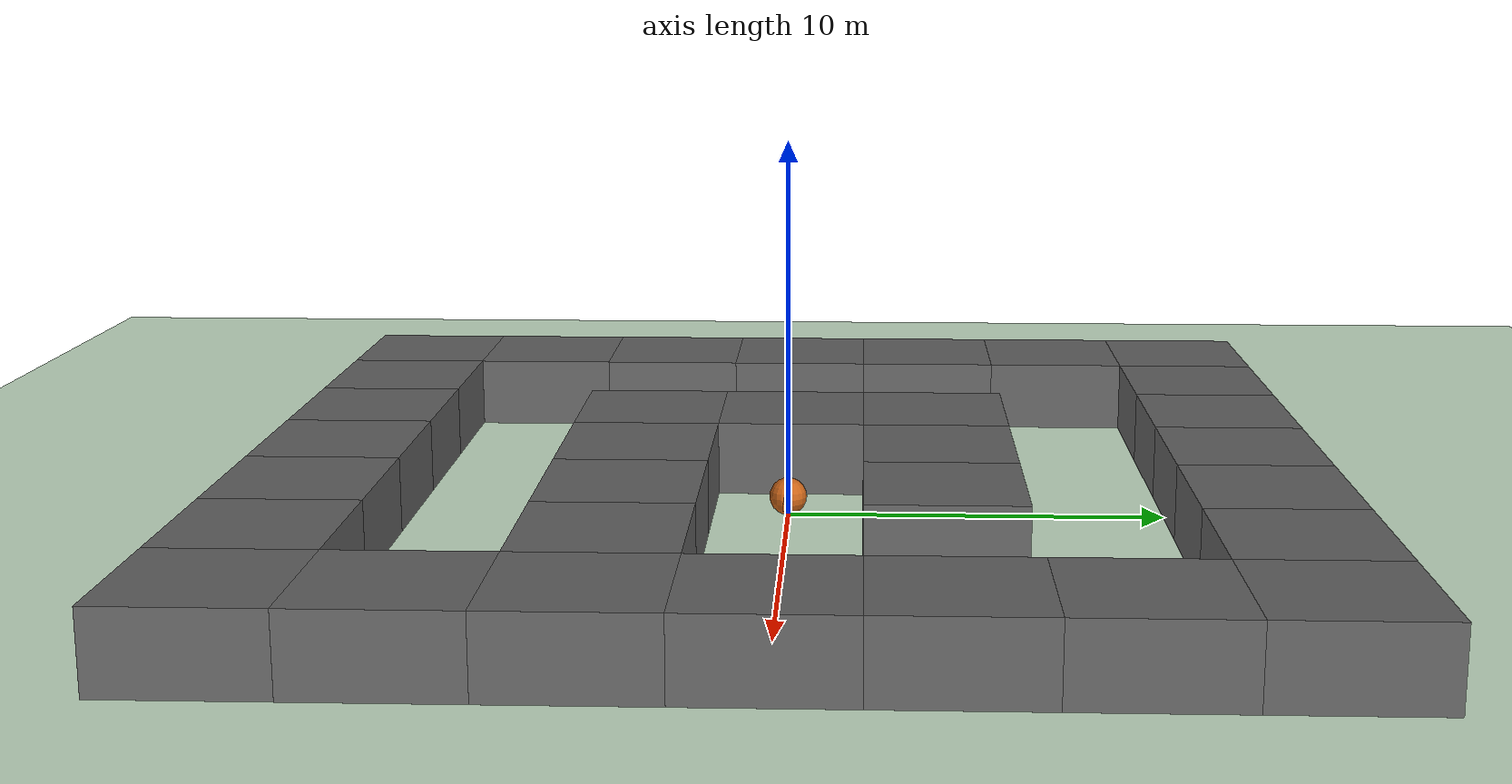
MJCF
<mujoco>
    <compiler angle="degree" coordinate="local" inertiafromgeom="true" />
    <option integrator="RK4" timestep="0.02" />
    <default>
        <joint armature="0" damping="0" limited="false" />
        <geom conaffinity="0" condim="3" density="100" friction="1.0 0.5 0.5" margin="0" rgba="0.8 0.6 0.4 1" />
    </default>
    <asset>
        <texture builtin="gradient" height="100" rgb1="1 1 1" rgb2="0 0 0" type="skybox" width="100" />
        <texture builtin="flat" height="1278" mark="cross" markrgb="1 1 1" name="texgeom" random="0.01" rgb1="0.8 0.6 0.4" rgb2="0.8 0.6 0.4" type="cube" width="127" />
        <texture builtin="checker" height="100" name="texplane" rgb1="0.2 0.3 0.4" rgb2="0.1 0.2 0.3" type="2d" width="100" />
        <material name="MatPlane" reflectance="0.5" shininess="1" specular="1" texrepeat="30 30" texture="texplane" />
        <material name="geom" texture="texgeom" texuniform="true" />
    </asset>
    <worldbody>
        <camera name="topview" pos="8 8 55" quat="1 0 0 0" />

        <light cutoff="100" diffuse="1 1 1" dir="-0 0 -1.3" directional="true" exponent="1" pos="0 0 1.3" specular=".1 .1 .1" />
        <geom conaffinity="1" condim="3" material="MatPlane" name="floor" pos="0 0 0" rgba="0.8 0.9 0.8 1" size="40 40 40" type="plane" />

        <body name="torso" pos="0 0 0">
            <geom name="pointbody" pos="0 0 0.5" rgba="0.8 0.4 0.1 1" size="0.5" solimp="0.9 0.99 0.001" type="sphere" />
            <geom name="pointarrow" pos="0.6 0 0.5" rgba="0.8 0.4 0.1 1" size="0.5 0.1 0.1" solimp="0.9 0.99 0.001" type="box" />
            <joint axis="1 0 0" name="ballx" pos="0 0 0" type="slide" />
            <joint axis="0 1 0" name="bally" pos="0 0 0" type="slide" />
            <joint axis="0 0 1" limited="false" name="rot" pos="0 0 0" type="hinge" />
        </body>
        <geom conaffinity="1" contype="1" material="" name="block_0_0" pos="-12.0 -12.0 1.0" rgba="0.4 0.4 0.4 1" size="2.0 2.0 1.0" type="box" />
        <geom conaffinity="1" contype="1" material="" name="block_0_1" pos="-8.0 -12.0 1.0" rgba="0.4 0.4 0.4 1" size="2.0 2.0 1.0" type="box" />
        <geom conaffinity="1" contype="1" material="" name="block_0_2" pos="-4.0 -12.0 1.0" rgba="0.4 0.4 0.4 1" size="2.0 2.0 1.0" type="box" />
        <geom conaffinity="1" contype="1" material="" name="block_0_3" pos="0.0 -12.0 1.0" rgba="0.4 0.4 0.4 1" size="2.0 2.0 1.0" type="box" />
        <geom conaffinity="1" contype="1" material="" name="block_0_4" pos="4.0 -12.0 1.0" rgba="0.4 0.4 0.4 1" size="2.0 2.0 1.0" type="box" />
        <geom conaffinity="1" contype="1" material="" name="block_0_5" pos="8.0 -12.0 1.0" rgba="0.4 0.4 0.4 1" size="2.0 2.0 1.0" type="box" />
        <geom conaffinity="1" contype="1" material="" name="block_0_6" pos="12.0 -12.0 1.0" rgba="0.4 0.4 0.4 1" size="2.0 2.0 1.0" type="box" />
        <geom conaffinity="1" contype="1" material="" name="block_1_0" pos="-12.0 -8.0 1.0" rgba="0.4 0.4 0.4 1" size="2.0 2.0 1.0" type="box" />
        <geom conaffinity="1" contype="1" material="" name="block_1_6" pos="12.0 -8.0 1.0" rgba="0.4 0.4 0.4 1" size="2.0 2.0 1.0" type="box" />
        <geom conaffinity="1" contype="1" material="" name="block_2_0" pos="-12.0 -4.0 1.0" rgba="0.4 0.4 0.4 1" size="2.0 2.0 1.0" type="box" />
        <geom conaffinity="1" contype="1" material="" name="block_2_2" pos="-4.0 -4.0 1.0" rgba="0.4 0.4 0.4 1" size="2.0 2.0 1.0" type="box" />
        <geom conaffinity="1" contype="1" material="" name="block_2_3" pos="0.0 -4.0 1.0" rgba="0.4 0.4 0.4 1" size="2.0 2.0 1.0" type="box" />
        <geom conaffinity="1" contype="1" material="" name="block_2_4" pos="4.0 -4.0 1.0" rgba="0.4 0.4 0.4 1" size="2.0 2.0 1.0" type="box" />
        <geom conaffinity="1" contype="1" material="" name="block_2_5" pos="8.0 -4.0 1.0" rgba="0.4 0.4 0.4 1" size="2.0 2.0 1.0" type="box" />
        <geom conaffinity="1" contype="1" material="" name="block_2_6" pos="12.0 -4.0 1.0" rgba="0.4 0.4 0.4 1" size="2.0 2.0 1.0" type="box" />
        <geom conaffinity="1" contype="1" material="" name="block_3_0" pos="-12.0 0.0 1.0" rgba="0.4 0.4 0.4 1" size="2.0 2.0 1.0" type="box" />
        <geom conaffinity="1" contype="1" material="" name="block_3_2" pos="-4.0 0.0 1.0" rgba="0.4 0.4 0.4 1" size="2.0 2.0 1.0" type="box" />
        <geom conaffinity="1" contype="1" material="" name="block_3_6" pos="12.0 0.0 1.0" rgba="0.4 0.4 0.4 1" size="2.0 2.0 1.0" type="box" />
        <geom conaffinity="1" contype="1" material="" name="block_4_0" pos="-12.0 4.0 1.0" rgba="0.4 0.4 0.4 1" size="2.0 2.0 1.0" type="box" />
        <geom conaffinity="1" contype="1" material="" name="block_4_2" pos="-4.0 4.0 1.0" rgba="0.4 0.4 0.4 1" size="2.0 2.0 1.0" type="box" />
        <geom conaffinity="1" contype="1" material="" name="block_4_3" pos="0.0 4.0 1.0" rgba="0.4 0.4 0.4 1" size="2.0 2.0 1.0" type="box" />
        <geom conaffinity="1" contype="1" material="" name="block_4_4" pos="4.0 4.0 1.0" rgba="0.4 0.4 0.4 1" size="2.0 2.0 1.0" type="box" />
        <geom conaffinity="1" contype="1" material="" name="block_4_6" pos="12.0 4.0 1.0" rgba="0.4 0.4 0.4 1" size="2.0 2.0 1.0" type="box" />
        <geom conaffinity="1" contype="1" material="" name="block_5_0" pos="-12.0 8.0 1.0" rgba="0.4 0.4 0.4 1" size="2.0 2.0 1.0" type="box" />
        <geom conaffinity="1" contype="1" material="" name="block_5_6" pos="12.0 8.0 1.0" rgba="0.4 0.4 0.4 1" size="2.0 2.0 1.0" type="box" />
        <geom conaffinity="1" contype="1" material="" name="block_6_0" pos="-12.0 12.0 1.0" rgba="0.4 0.4 0.4 1" size="2.0 2.0 1.0" type="box" />
        <geom conaffinity="1" contype="1" material="" name="block_6_1" pos="-8.0 12.0 1.0" rgba="0.4 0.4 0.4 1" size="2.0 2.0 1.0" type="box" />
        <geom conaffinity="1" contype="1" material="" name="block_6_2" pos="-4.0 12.0 1.0" rgba="0.4 0.4 0.4 1" size="2.0 2.0 1.0" type="box" />
        <geom conaffinity="1" contype="1" material="" name="block_6_3" pos="0.0 12.0 1.0" rgba="0.4 0.4 0.4 1" size="2.0 2.0 1.0" type="box" />
        <geom conaffinity="1" contype="1" material="" name="block_6_4" pos="4.0 12.0 1.0" rgba="0.4 0.4 0.4 1" size="2.0 2.0 1.0" type="box" />
        <geom conaffinity="1" contype="1" material="" name="block_6_5" pos="8.0 12.0 1.0" rgba="0.4 0.4 0.4 1" size="2.0 2.0 1.0" type="box" />
        <geom conaffinity="1" contype="1" material="" name="block_6_6" pos="12.0 12.0 1.0" rgba="0.4 0.4 0.4 1" size="2.0 2.0 1.0" type="box" />
        <site name="goal_site0" pos="8.0 -8.0 0.0" rgba="0.7 0.1 0.1 1" size="0.4" />
    </worldbody>
    <actuator>

        <motor ctrllimited="true" ctrlrange="-1 1" joint="ballx" />
        <motor ctrllimited="true" ctrlrange="-0.25 0.25" joint="rot" />
    </actuator>
</mujoco>
